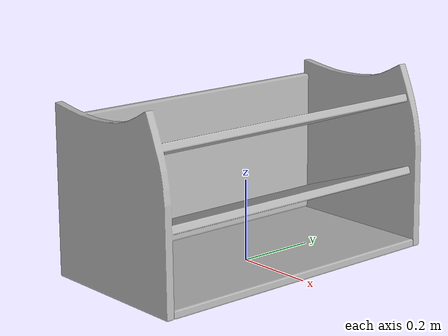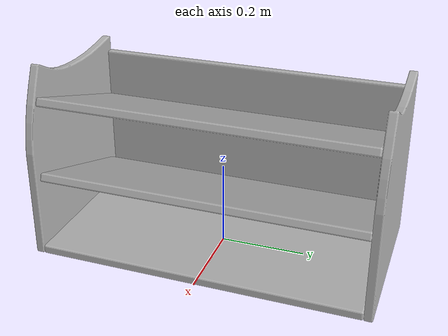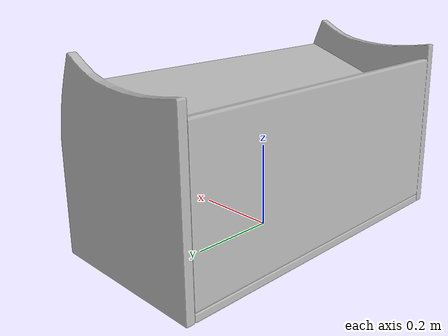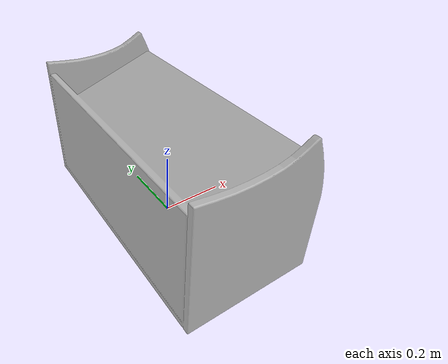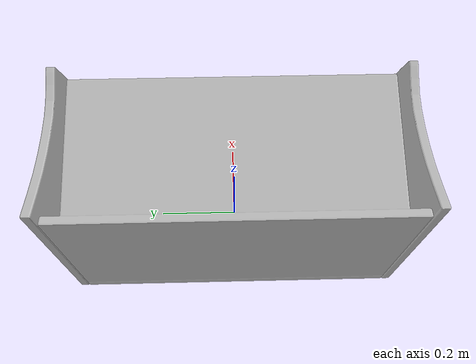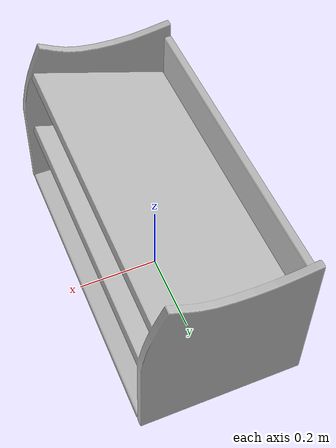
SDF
<?xml version='1.0'?>
<sdf version='1.4'>
  <model name='292'>
    <pose>0 0 0 0 0 0</pose>
    <static>true</static>
    <link name='link'>
      <collision name='collision'>
        <pose>0 0 0 0 0 0</pose>
        <geometry>
          <box>
            <size>0.4 0.8 2</size>
          </box>
        </geometry>
      </collision>
      <visual name='visual'>
        <pose>0 0 0 0 0 0</pose>
        <geometry>
          <mesh><uri>model://292/292.dae</uri></mesh>
        </geometry>
      </visual>
    </link>
  </model>
</sdf>
